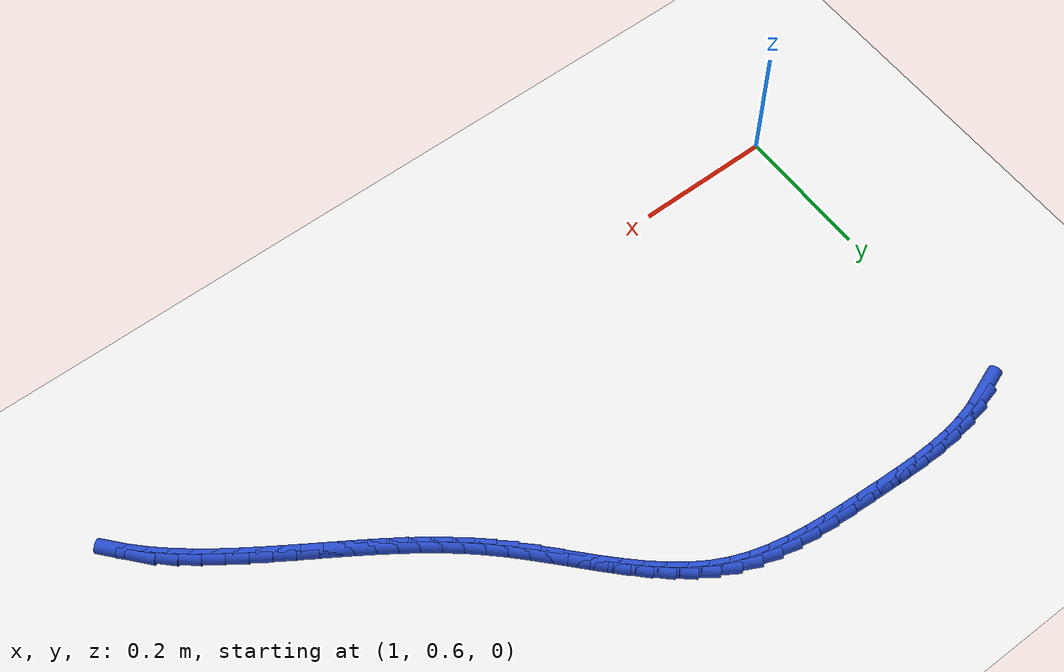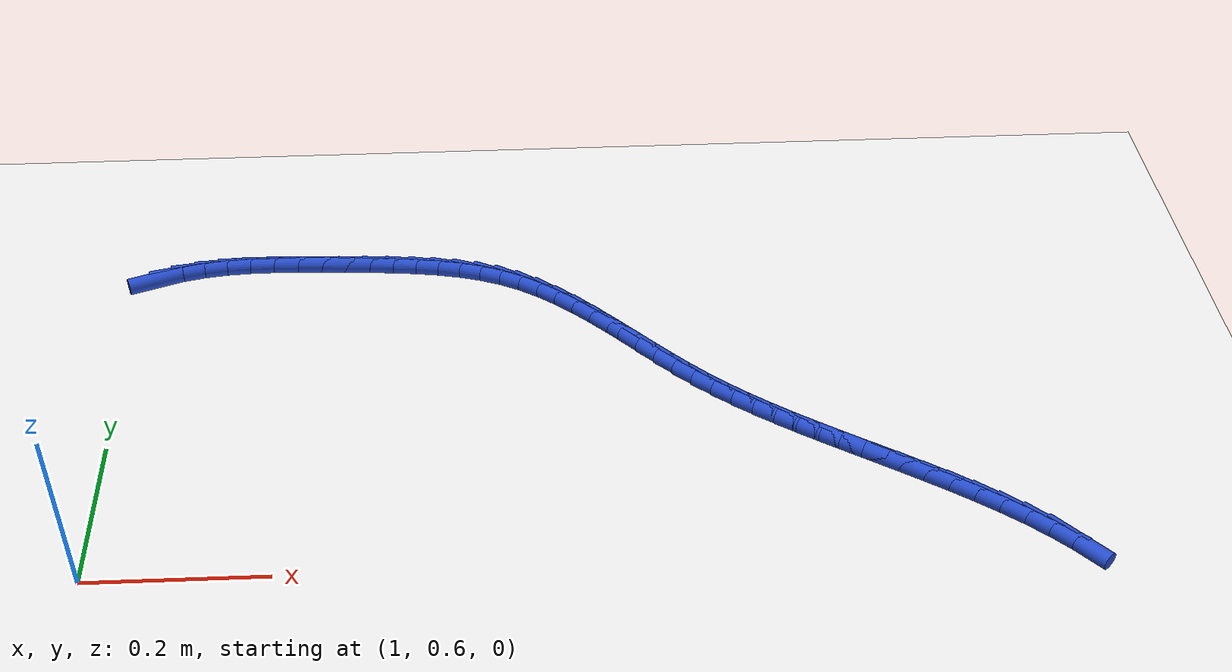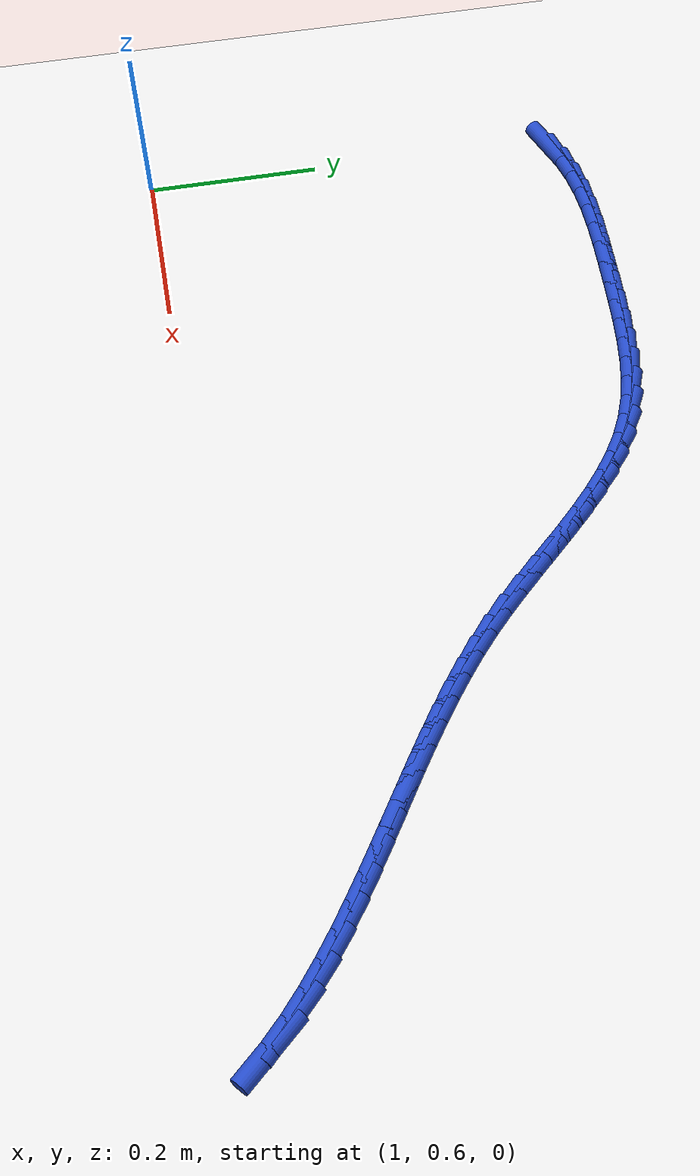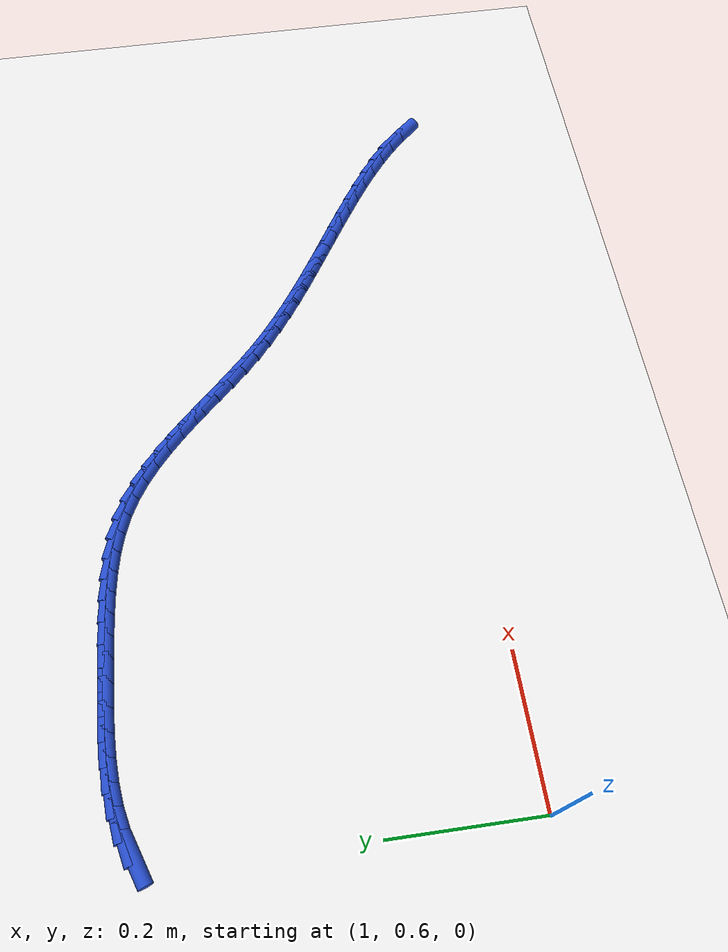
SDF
<sdf version="1.6">
 <world name="default">
  <model name="ground_plane">
   <static>1</static>
   <link name="link">
    <collision name="collision">
     <geometry><plane><normal>0 0 1</normal><size>100 100</size></plane></geometry>
     <surface><friction><ode><mu>100</mu><mu2>50</mu2></ode></friction></surface>
    </collision>
    <visual name="visual">
     <cast_shadows>0</cast_shadows>
     <geometry><plane><normal>0 0 1</normal><size>100 100</size></plane></geometry>
     <material>
      <script><uri>file://media/materials/scripts/gazebo.material</uri><name>Gazebo/WhiteGlow</name></script>
     </material>
    </visual>
   </link>
  </model>
  <model name="line">
   <link name="link_59">
    <pose>1.0257715923430428 1.0912072561204584 0.01 0 1.57 0.352231414497782</pose>
    <collision name="collision">
     <geometry><cylinder><radius>0.01</radius><length>0.08</length></cylinder></geometry>
    </collision>
    <visual name="visual">
     <material>
      <script><name>Gazebo/Blue</name><uri>file://media/materials/scripts/gazebo.material</uri></script>
     </material>
     <geometry><cylinder><radius>0.01</radius><length>0.08</length></cylinder></geometry>
    </visual>
   </link>
   <link name="link_60">
    <pose>1.0510290323063667 1.1004908631125918 0.01 0 1.57 0.2344722694735703</pose>
    <collision name="collision">
     <geometry><cylinder><radius>0.01</radius><length>0.08</length></cylinder></geometry>
    </collision>
    <visual name="visual">
     <material>
      <script><name>Gazebo/Blue</name><uri>file://media/materials/scripts/gazebo.material</uri></script>
     </material>
     <geometry><cylinder><radius>0.01</radius><length>0.08</length></cylinder></geometry>
    </visual>
   </link>
   <link name="link_61">
    <pose>1.077777624864615 1.10688018686298 0.01 0 1.57 0.13976471854260306</pose>
    <collision name="collision">
     <geometry><cylinder><radius>0.01</radius><length>0.08</length></cylinder></geometry>
    </collision>
    <visual name="visual">
     <material>
      <script><name>Gazebo/Blue</name><uri>file://media/materials/scripts/gazebo.material</uri></script>
     </material>
     <geometry><cylinder><radius>0.01</radius><length>0.08</length></cylinder></geometry>
    </visual>
   </link>
   <link name="link_62">
    <pose>1.1057464248677067 1.1108148921597991 0.01 0 1.57 0.06628863559861622</pose>
    <collision name="collision">
     <geometry><cylinder><radius>0.01</radius><length>0.08</length></cylinder></geometry>
    </collision>
    <visual name="visual">
     <material>
      <script><name>Gazebo/Blue</name><uri>file://media/materials/scripts/gazebo.material</uri></script>
     </material>
     <geometry><cylinder><radius>0.01</radius><length>0.08</length></cylinder></geometry>
    </visual>
   </link>
   <link name="link_63">
    <pose>1.1346644871655602 1.1127346437912238 0.01 0 1.57 0.01163815332984267</pose>
    <collision name="collision">
     <geometry><cylinder><radius>0.01</radius><length>0.08</length></cylinder></geometry>
    </collision>
    <visual name="visual">
     <material>
      <script><name>Gazebo/Blue</name><uri>file://media/materials/scripts/gazebo.material</uri></script>
     </material>
     <geometry><cylinder><radius>0.01</radius><length>0.08</length></cylinder></geometry>
    </visual>
   </link>
   <link name="link_64">
    <pose>1.1642608666080947 1.113079106545429 0.01 0 1.57 -0.026362638194593606</pose>
    <collision name="collision">
     <geometry><cylinder><radius>0.01</radius><length>0.08</length></cylinder></geometry>
    </collision>
    <visual name="visual">
     <material>
      <script><name>Gazebo/Blue</name><uri>file://media/materials/scripts/gazebo.material</uri></script>
     </material>
     <geometry><cylinder><radius>0.01</radius><length>0.08</length></cylinder></geometry>
    </visual>
   </link>
   <link name="link_65">
    <pose>1.1942646180452299 1.1122879452105916 0.01 0 1.57 -0.04930016034097183</pose>
    <collision name="collision">
     <geometry><cylinder><radius>0.01</radius><length>0.08</length></cylinder></geometry>
    </collision>
    <visual name="visual">
     <material>
      <script><name>Gazebo/Blue</name><uri>file://media/materials/scripts/gazebo.material</uri></script>
     </material>
     <geometry><cylinder><radius>0.01</radius><length>0.08</length></cylinder></geometry>
    </visual>
   </link>
   <link name="link_66">
    <pose>1.2244047963268836 1.110800824574886 0.01 0 1.57 -0.05823710524409093</pose>
    <collision name="collision">
     <geometry><cylinder><radius>0.01</radius><length>0.08</length></cylinder></geometry>
    </collision>
    <visual name="visual">
     <material>
      <script><name>Gazebo/Blue</name><uri>file://media/materials/scripts/gazebo.material</uri></script>
     </material>
     <geometry><cylinder><radius>0.01</radius><length>0.08</length></cylinder></geometry>
    </visual>
   </link>
   <link name="link_67">
    <pose>1.2544116241469176 1.1090513355051166 0.01 0 1.57 -0.06340571590850112</pose>
    <collision name="collision">
     <geometry><cylinder><radius>0.01</radius><length>0.08</length></cylinder></geometry>
    </collision>
    <visual name="visual">
     <material>
      <script><name>Gazebo/Blue</name><uri>file://media/materials/scripts/gazebo.material</uri></script>
     </material>
     <geometry><cylinder><radius>0.01</radius><length>0.08</length></cylinder></geometry>
    </visual>
   </link>
   <link name="link_68">
    <pose>1.2840739709816575 1.1071680487087527 0.01 0 1.57 -0.07964757407403138</pose>
    <collision name="collision">
     <geometry><cylinder><radius>0.01</radius><length>0.08</length></cylinder></geometry>
    </collision>
    <visual name="visual">
     <material>
      <script><name>Gazebo/Blue</name><uri>file://media/materials/scripts/gazebo.material</uri></script>
     </material>
     <geometry><cylinder><radius>0.01</radius><length>0.08</length></cylinder></geometry>
    </visual>
   </link>
   <link name="link_69">
    <pose>1.313265585952216 1.1048380784025722 0.01 0 1.57 -0.1087972300854935</pose>
    <collision name="collision">
     <geometry><cylinder><radius>0.01</radius><length>0.08</length></cylinder></geometry>
    </collision>
    <visual name="visual">
     <material>
      <script><name>Gazebo/Blue</name><uri>file://media/materials/scripts/gazebo.material</uri></script>
     </material>
     <geometry><cylinder><radius>0.01</radius><length>0.08</length></cylinder></geometry>
    </visual>
   </link>
   <link name="link_70">
    <pose>1.3418668584317441 1.101714003051347 0.01 0 1.57 -0.15176062665885995</pose>
    <collision name="collision">
     <geometry><cylinder><radius>0.01</radius><length>0.08</length></cylinder></geometry>
    </collision>
    <visual name="visual">
     <material>
      <script><name>Gazebo/Blue</name><uri>file://media/materials/scripts/gazebo.material</uri></script>
     </material>
     <geometry><cylinder><radius>0.01</radius><length>0.08</length></cylinder></geometry>
    </visual>
   </link>
   <link name="link_71">
    <pose>1.3697581777933943 1.0974484011198493 0.01 0 1.57 -0.20952423100399994</pose>
    <collision name="collision">
     <geometry><cylinder><radius>0.01</radius><length>0.08</length></cylinder></geometry>
    </collision>
    <visual name="visual">
     <material>
      <script><name>Gazebo/Blue</name><uri>file://media/materials/scripts/gazebo.material</uri></script>
     </material>
     <geometry><cylinder><radius>0.01</radius><length>0.08</length></cylinder></geometry>
    </visual>
   </link>
   <link name="link_72">
    <pose>1.396819933410318 1.0916938510728513 0.01 0 1.57 -0.2829027270468992</pose>
    <collision name="collision">
     <geometry><cylinder><radius>0.01</radius><length>0.08</length></cylinder></geometry>
    </collision>
    <visual name="visual">
     <material>
      <script><name>Gazebo/Blue</name><uri>file://media/materials/scripts/gazebo.material</uri></script>
     </material>
     <geometry><cylinder><radius>0.01</radius><length>0.08</length></cylinder></geometry>
    </visual>
   </link>
   <link name="link_73">
    <pose>1.422932514655667 1.0841029313751251 0.01 0 1.57 -0.3721205029028804</pose>
    <collision name="collision">
     <geometry><cylinder><radius>0.01</radius><length>0.08</length></cylinder></geometry>
    </collision>
    <visual name="visual">
     <material>
      <script><name>Gazebo/Blue</name><uri>file://media/materials/scripts/gazebo.material</uri></script>
     </material>
     <geometry><cylinder><radius>0.01</radius><length>0.08</length></cylinder></geometry>
    </visual>
   </link>
   <link name="link_74">
    <pose>1.4479763109025934 1.074328220491442 0.01 0 1.57 -0.47444349677733094</pose>
    <collision name="collision">
     <geometry><cylinder><radius>0.01</radius><length>0.08</length></cylinder></geometry>
    </collision>
    <visual name="visual">
     <material>
      <script><name>Gazebo/Blue</name><uri>file://media/materials/scripts/gazebo.material</uri></script>
     </material>
     <geometry><cylinder><radius>0.01</radius><length>0.08</length></cylinder></geometry>
    </visual>
   </link>
   <link name="link_75">
    <pose>1.4718501151609102 1.0620673835558165 0.01 0 1.57 -0.5707305110453237</pose>
    <collision name="collision">
     <geometry><cylinder><radius>0.01</radius><length>0.08</length></cylinder></geometry>
    </collision>
    <visual name="visual">
     <material>
      <script><name>Gazebo/Blue</name><uri>file://media/materials/scripts/gazebo.material</uri></script>
     </material>
     <geometry><cylinder><radius>0.01</radius><length>0.08</length></cylinder></geometry>
    </visual>
   </link>
   <link name="link_76">
    <pose>1.4946268646821808 1.0474447178930946 0.01 0 1.57 -0.6504564402695533</pose>
    <collision name="collision">
     <geometry><cylinder><radius>0.01</radius><length>0.08</length></cylinder></geometry>
    </collision>
    <visual name="visual">
     <material>
      <script><name>Gazebo/Blue</name><uri>file://media/materials/scripts/gazebo.material</uri></script>
     </material>
     <geometry><cylinder><radius>0.01</radius><length>0.08</length></cylinder></geometry>
    </visual>
   </link>
   <link name="link_77">
    <pose>1.5164754472709674 1.0308195880013216 0.01 0 1.57 -0.7137524934701942</pose>
    <collision name="collision">
     <geometry><cylinder><radius>0.01</radius><length>0.08</length></cylinder></geometry>
    </collision>
    <visual name="visual">
     <material>
      <script><name>Gazebo/Blue</name><uri>file://media/materials/scripts/gazebo.material</uri></script>
     </material>
     <geometry><cylinder><radius>0.01</radius><length>0.08</length></cylinder></geometry>
    </visual>
   </link>
   <link name="link_78">
    <pose>1.5375657517863845 1.0125538108403256 0.01 0 1.57 -0.7614978225490431</pose>
    <collision name="collision">
     <geometry><cylinder><radius>0.01</radius><length>0.08</length></cylinder></geometry>
    </collision>
    <visual name="visual">
     <material>
      <script><name>Gazebo/Blue</name><uri>file://media/materials/scripts/gazebo.material</uri></script>
     </material>
     <geometry><cylinder><radius>0.01</radius><length>0.08</length></cylinder></geometry>
    </visual>
   </link>
   <link name="link_79">
    <pose>1.55806766708755 0.9930092033699367 0.01 0 1.57 -0.7947259367688937</pose>
    <collision name="collision">
     <geometry><cylinder><radius>0.01</radius><length>0.08</length></cylinder></geometry>
    </collision>
    <visual name="visual">
     <material>
      <script><name>Gazebo/Blue</name><uri>file://media/materials/scripts/gazebo.material</uri></script>
     </material>
     <geometry><cylinder><radius>0.01</radius><length>0.08</length></cylinder></geometry>
    </visual>
   </link>
   <link name="link_80">
    <pose>1.578151082033579 0.9725475825499842 0.01 0 1.57 -0.8143244103278805</pose>
    <collision name="collision">
     <geometry><cylinder><radius>0.01</radius><length>0.08</length></cylinder></geometry>
    </collision>
    <visual name="visual">
     <material>
      <script><name>Gazebo/Blue</name><uri>file://media/materials/scripts/gazebo.material</uri></script>
     </material>
     <geometry><cylinder><radius>0.01</radius><length>0.08</length></cylinder></geometry>
    </visual>
   </link>
   <link name="link_81">
    <pose>1.5979858854835878 0.9515307653402976 0.01 0 1.57 -0.8208787021572097</pose>
    <collision name="collision">
     <geometry><cylinder><radius>0.01</radius><length>0.08</length></cylinder></geometry>
    </collision>
    <visual name="visual">
     <material>
      <script><name>Gazebo/Blue</name><uri>file://media/materials/scripts/gazebo.material</uri></script>
     </material>
     <geometry><cylinder><radius>0.01</radius><length>0.08</length></cylinder></geometry>
    </visual>
   </link>
   <link name="link_82">
    <pose>1.6177419662966934 0.9303205687007067 0.01 0 1.57 -0.8146033838212768</pose>
    <collision name="collision">
     <geometry><cylinder><radius>0.01</radius><length>0.08</length></cylinder></geometry>
    </collision>
    <visual name="visual">
     <material>
      <script><name>Gazebo/Blue</name><uri>file://media/materials/scripts/gazebo.material</uri></script>
     </material>
     <geometry><cylinder><radius>0.01</radius><length>0.08</length></cylinder></geometry>
    </visual>
   </link>
   <link name="link_83">
    <pose>1.637589213332011 0.9092788095910398 0.01 0 1.57 -0.7953240910139859</pose>
    <collision name="collision">
     <geometry><cylinder><radius>0.01</radius><length>0.08</length></cylinder></geometry>
    </collision>
    <visual name="visual">
     <material>
      <script><name>Gazebo/Blue</name><uri>file://media/materials/scripts/gazebo.material</uri></script>
     </material>
     <geometry><cylinder><radius>0.01</radius><length>0.08</length></cylinder></geometry>
    </visual>
   </link>
   <link name="link_84">
    <pose>1.657697515448658 0.8887673049711279 0.01 0 1.57 -0.7625664041388581</pose>
    <collision name="collision">
     <geometry><cylinder><radius>0.01</radius><length>0.08</length></cylinder></geometry>
    </collision>
    <visual name="visual">
     <material>
      <script><name>Gazebo/Blue</name><uri>file://media/materials/scripts/gazebo.material</uri></script>
     </material>
     <geometry><cylinder><radius>0.01</radius><length>0.08</length></cylinder></geometry>
    </visual>
   </link>
   <link name="link_85">
    <pose>1.6782359848792336 0.8691459151392036 0.01 0 1.57 -0.7218798498505983</pose>
    <collision name="collision">
     <geometry><cylinder><radius>0.01</radius><length>0.08</length></cylinder></geometry>
    </collision>
    <visual name="visual">
     <material>
      <script><name>Gazebo/Blue</name><uri>file://media/materials/scripts/gazebo.material</uri></script>
     </material>
     <geometry><cylinder><radius>0.01</radius><length>0.08</length></cylinder></geometry>
    </visual>
   </link>
   <link name="link_86">
    <pose>1.6993036584177765 0.850597949739368 0.01 0 1.57 -0.6845250397608879</pose>
    <collision name="collision">
     <geometry><cylinder><radius>0.01</radius><length>0.08</length></cylinder></geometry>
    </collision>
    <visual name="visual">
     <material>
      <script><name>Gazebo/Blue</name><uri>file://media/materials/scripts/gazebo.material</uri></script>
     </material>
     <geometry><cylinder><radius>0.01</radius><length>0.08</length></cylinder></geometry>
    </visual>
   </link>
   <link name="link_87">
    <pose>1.7208747414694832 0.8329922135933672 0.01 0 1.57 -0.6521662461996894</pose>
    <collision name="collision">
     <geometry><cylinder><radius>0.01</radius><length>0.08</length></cylinder></geometry>
    </collision>
    <visual name="visual">
     <material>
      <script><name>Gazebo/Blue</name><uri>file://media/materials/scripts/gazebo.material</uri></script>
     </material>
     <geometry><cylinder><radius>0.01</radius><length>0.08</length></cylinder></geometry>
    </visual>
   </link>
   <link name="link_88">
    <pose>1.7429105535665932 0.8161650463775769 0.01 0 1.57 -0.6251866466433658</pose>
    <collision name="collision">
     <geometry><cylinder><radius>0.01</radius><length>0.08</length></cylinder></geometry>
    </collision>
    <visual name="visual">
     <material>
      <script><name>Gazebo/Blue</name><uri>file://media/materials/scripts/gazebo.material</uri></script>
     </material>
     <geometry><cylinder><radius>0.01</radius><length>0.08</length></cylinder></geometry>
    </visual>
   </link>
   <link name="link_89">
    <pose>1.7653724142413454 0.799952787768372 0.01 0 1.57 -0.6038359764973609</pose>
    <collision name="collision">
     <geometry><cylinder><radius>0.01</radius><length>0.08</length></cylinder></geometry>
    </collision>
    <visual name="visual">
     <material>
      <script><name>Gazebo/Blue</name><uri>file://media/materials/scripts/gazebo.material</uri></script>
     </material>
     <geometry><cylinder><radius>0.01</radius><length>0.08</length></cylinder></geometry>
    </visual>
   </link>
   <link name="link_90">
    <pose>1.788221643025978 0.7841917774421275 0.01 0 1.57 -0.58824563221651</pose>
    <collision name="collision">
     <geometry><cylinder><radius>0.01</radius><length>0.08</length></cylinder></geometry>
    </collision>
    <visual name="visual">
     <material>
      <script><name>Gazebo/Blue</name><uri>file://media/materials/scripts/gazebo.material</uri></script>
     </material>
     <geometry><cylinder><radius>0.01</radius><length>0.08</length></cylinder></geometry>
    </visual>
   </link>
   <link name="link_91">
    <pose>1.8114195594527307 0.7687183550752195 0.01 0 1.57 -0.5784461208224325</pose>
    <collision name="collision">
     <geometry><cylinder><radius>0.01</radius><length>0.08</length></cylinder></geometry>
    </collision>
    <visual name="visual">
     <material>
      <script><name>Gazebo/Blue</name><uri>file://media/materials/scripts/gazebo.material</uri></script>
     </material>
     <geometry><cylinder><radius>0.01</radius><length>0.08</length></cylinder></geometry>
    </visual>
   </link>
   <link name="link_92">
    <pose>1.8349274830538411 0.7533688603440227 0.01 0 1.57 -0.5743834883752668</pose>
    <collision name="collision">
     <geometry><cylinder><radius>0.01</radius><length>0.08</length></cylinder></geometry>
    </collision>
    <visual name="visual">
     <material>
      <script><name>Gazebo/Blue</name><uri>file://media/materials/scripts/gazebo.material</uri></script>
     </material>
     <geometry><cylinder><radius>0.01</radius><length>0.08</length></cylinder></geometry>
    </visual>
   </link>
   <link name="link_93">
    <pose>1.8587067333615492 0.7379796329249129 0.01 0 1.57 -0.5759326552285052</pose>
    <collision name="collision">
     <geometry><cylinder><radius>0.01</radius><length>0.08</length></cylinder></geometry>
    </collision>
    <visual name="visual">
     <material>
      <script><name>Gazebo/Blue</name><uri>file://media/materials/scripts/gazebo.material</uri></script>
     </material>
     <geometry><cylinder><radius>0.01</radius><length>0.08</length></cylinder></geometry>
    </visual>
   </link>
   <link name="link_94">
    <pose>1.8827186299080934 0.722387012494265 0.01 0 1.57 -0.5829068091328776</pose>
    <collision name="collision">
     <geometry><cylinder><radius>0.01</radius><length>0.08</length></cylinder></geometry>
    </collision>
    <visual name="visual">
     <material>
      <script><name>Gazebo/Blue</name><uri>file://media/materials/scripts/gazebo.material</uri></script>
     </material>
     <geometry><cylinder><radius>0.01</radius><length>0.08</length></cylinder></geometry>
    </visual>
   </link>
   <link name="link_95">
    <pose>1.906924492225712 0.7064273387284548 0.01 0 1.57 -0.5952761260430373</pose>
    <collision name="collision">
     <geometry><cylinder><radius>0.01</radius><length>0.08</length></cylinder></geometry>
    </collision>
    <visual name="visual">
     <material>
      <script><name>Gazebo/Blue</name><uri>file://media/materials/scripts/gazebo.material</uri></script>
     </material>
     <geometry><cylinder><radius>0.01</radius><length>0.08</length></cylinder></geometry>
    </visual>
   </link>
   <link name="link_96">
    <pose>1.9312637908765729 0.6899441755546898 0.01 0 1.57 -0.6147158251515006</pose>
    <collision name="collision">
     <geometry><cylinder><radius>0.01</radius><length>0.08</length></cylinder></geometry>
    </collision>
    <visual name="visual">
     <material>
      <script><name>Gazebo/Blue</name><uri>file://media/materials/scripts/gazebo.material</uri></script>
     </material>
     <geometry><cylinder><radius>0.01</radius><length>0.08</length></cylinder></geometry>
    </visual>
   </link>
   <link name="link_97">
    <pose>1.9554868483999237 0.672843627731974 0.01 0 1.57 -0.642412945179396</pose>
    <collision name="collision">
     <geometry><cylinder><radius>0.01</radius><length>0.08</length></cylinder></geometry>
    </collision>
    <visual name="visual">
     <material>
      <script><name>Gazebo/Blue</name><uri>file://media/materials/scripts/gazebo.material</uri></script>
     </material>
     <geometry><cylinder><radius>0.01</radius><length>0.08</length></cylinder></geometry>
    </visual>
   </link>
   <link name="link_98">
    <pose>1.9792470264530595 0.6550638596417957 0.01 0 1.57 -0.6789951276648124</pose>
    <collision name="collision">
     <geometry><cylinder><radius>0.01</radius><length>0.08</length></cylinder></geometry>
    </collision>
    <visual name="visual">
     <material>
      <script><name>Gazebo/Blue</name><uri>file://media/materials/scripts/gazebo.material</uri></script>
     </material>
     <geometry><cylinder><radius>0.01</radius><length>0.08</length></cylinder></geometry>
    </visual>
   </link>
   <link name="link_99">
    <pose>2.0021968981142853 0.6365432964052773 0.01 0 1.57 -0.7254142494406851</pose>
    <collision name="collision">
     <geometry><cylinder><radius>0.01</radius><length>0.08</length></cylinder></geometry>
    </collision>
    <visual name="visual">
     <material>
      <script><name>Gazebo/Blue</name><uri>file://media/materials/scripts/gazebo.material</uri></script>
     </material>
     <geometry><cylinder><radius>0.01</radius><length>0.08</length></cylinder></geometry>
    </visual>
   </link>
   <link name="link_100">
    <pose>2.023989036461902 0.6172203631435407 0.01 0 1.57 -0.7829249683132175</pose>
    <collision name="collision">
     <geometry><cylinder><radius>0.01</radius><length>0.08</length></cylinder></geometry>
    </collision>
    <visual name="visual">
     <material>
      <script><name>Gazebo/Blue</name><uri>file://media/materials/scripts/gazebo.material</uri></script>
     </material>
     <geometry><cylinder><radius>0.01</radius><length>0.08</length></cylinder></geometry>
    </visual>
   </link>
   <link name="link_101">
    <pose>2.0442760145742147 0.5970334849777088 0.01 0 1.57 -0.8530123698961674</pose>
    <collision name="collision">
     <geometry><cylinder><radius>0.01</radius><length>0.08</length></cylinder></geometry>
    </collision>
    <visual name="visual">
     <material>
      <script><name>Gazebo/Blue</name><uri>file://media/materials/scripts/gazebo.material</uri></script>
     </material>
     <geometry><cylinder><radius>0.01</radius><length>0.08</length></cylinder></geometry>
    </visual>
   </link>
  </model>
 </world>
</sdf>
